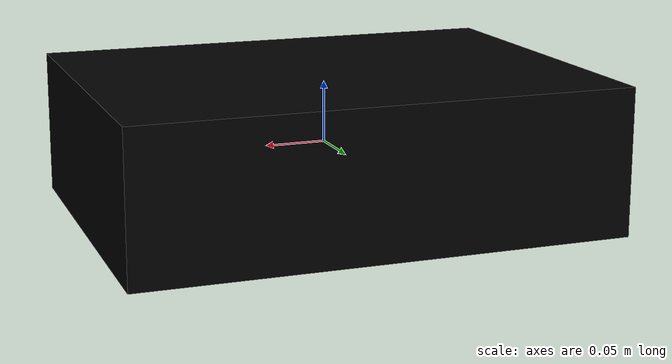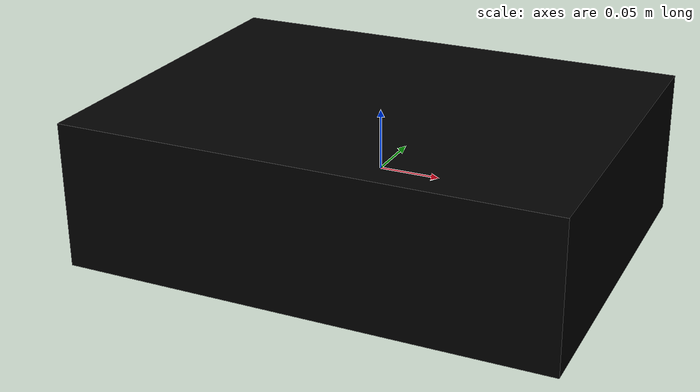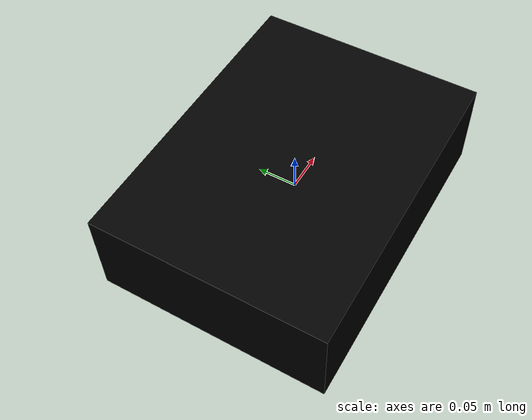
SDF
<?xml version="1.0"?>
<sdf version="1.9">
  <model name="case_stand">
    <static>true</static>
    <link name="case_stand_link">
      <inertial>
        <mass>4.000000</mass>
        <inertia>
          <ixx>0.004000000</ixx>
          <iyy>0.004000000</iyy>
          <izz>0.004000000</izz>
          <ixy>0</ixy>
          <ixz>0</ixz>
          <iyz>0</iyz>
        </inertia>
      </inertial>
      <visual name="case_stand_visual">
        <geometry>
          <mesh>
            <uri>meshes/case_stand.obj</uri>
          </mesh>
        </geometry>
        <material>
          <ambient>0.000000 0.000000 0.000000 1.000000</ambient>
          <diffuse>0.000000 0.000000 0.000000 1.000000</diffuse>
          <specular>0.120000 0.120000 0.120000 1.000000</specular>
        </material>
      </visual>
      <collision name="case_stand_case_stand_collision">
        <pose>0.000000000 0.000000000 0.000000000 0 0 0</pose>
        <geometry>
          <box>
            <size>0.400000006 0.300000012 0.119999997</size>
          </box>
        </geometry>
        <max_contacts>20</max_contacts>
        <surface>
          <friction>
            <ode>
              <mu>8.0</mu>
              <mu2>8.0</mu2>
              <slip1>0.0</slip1>
              <slip2>0.0</slip2>
            </ode>
            <torsional>
              <coefficient>1.0</coefficient>
              <use_patch_radius>true</use_patch_radius>
              <patch_radius>0.020000</patch_radius>
              <surface_radius>0.010000</surface_radius>
              <ode>
                <slip>0.0</slip>
              </ode>
            </torsional>
          </friction>
          <contact>
            <ode>
              <soft_cfm>0.000000</soft_cfm>
              <soft_erp>0.800000</soft_erp>
              <kp>1000000.000000</kp>
              <kd>100.000000</kd>
              <max_vel>0.010000</max_vel>
              <min_depth>0.002000</min_depth>
            </ode>
          </contact>
        </surface>
      </collision>
    </link>
  </model>
</sdf>
